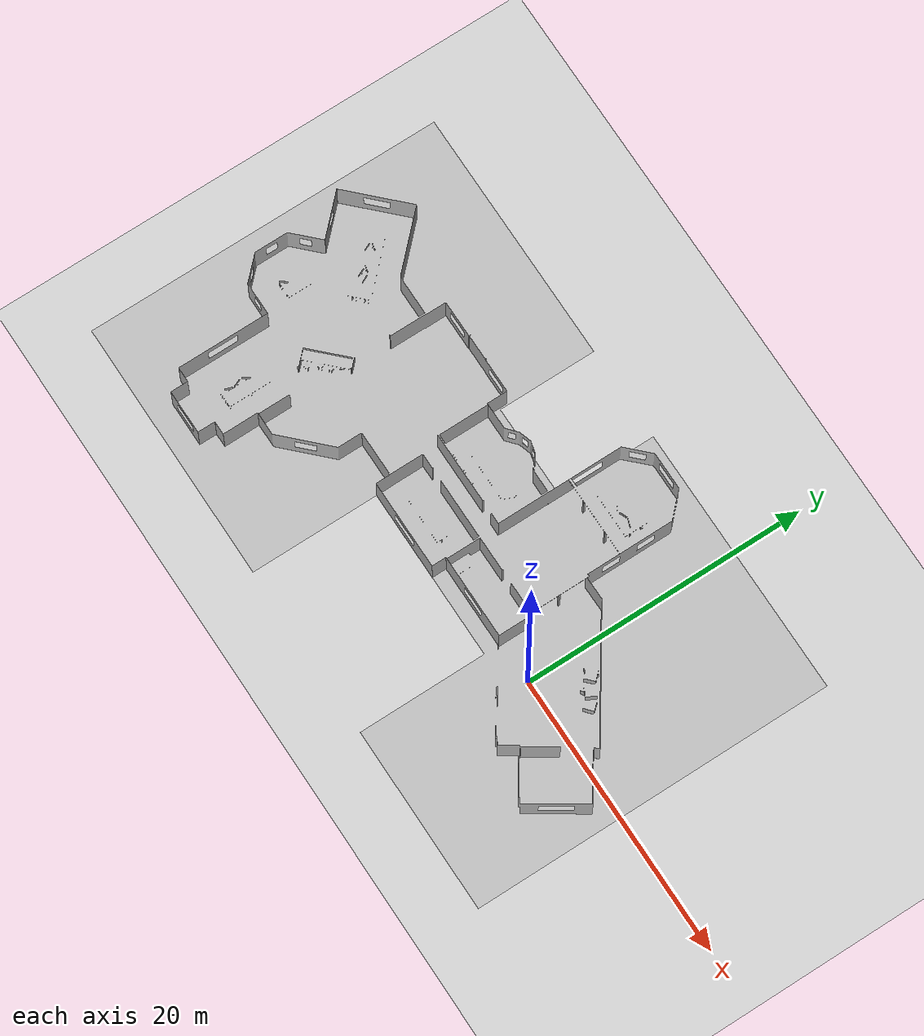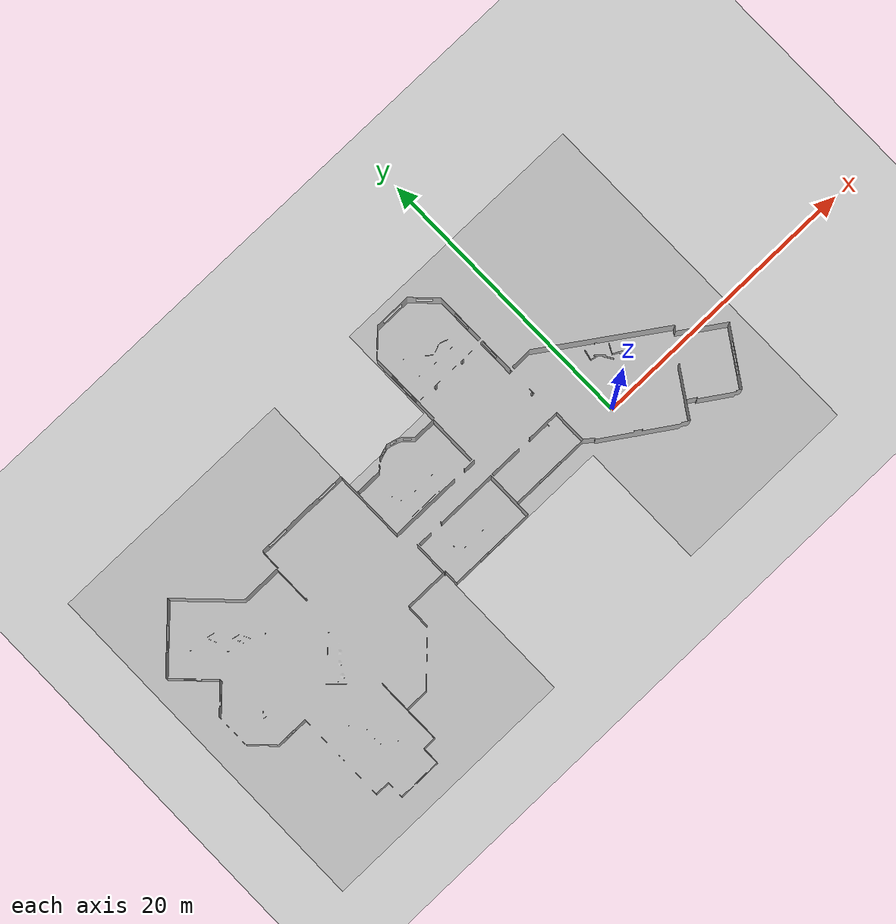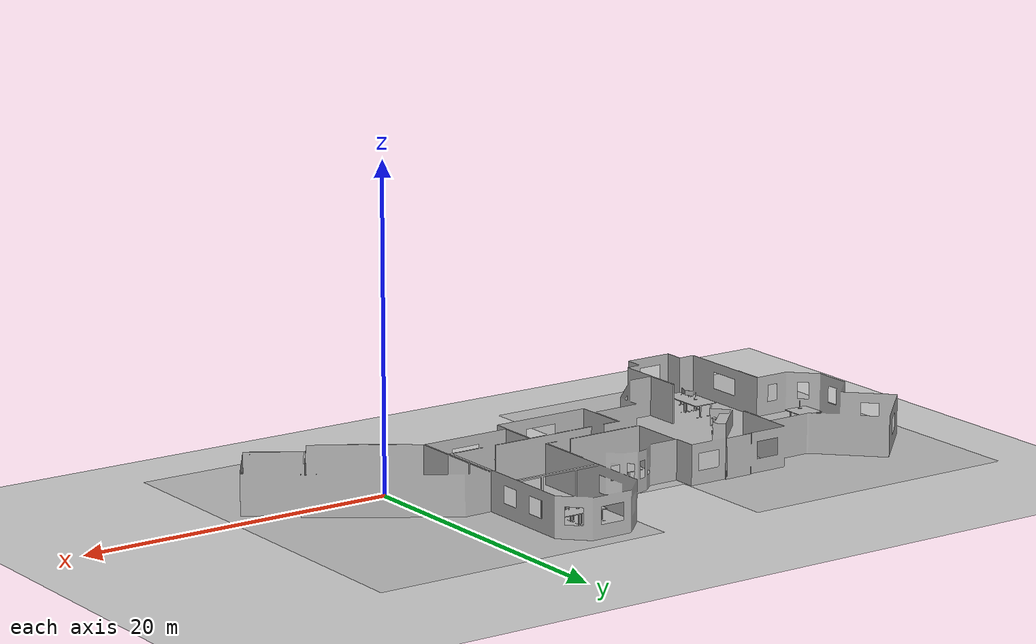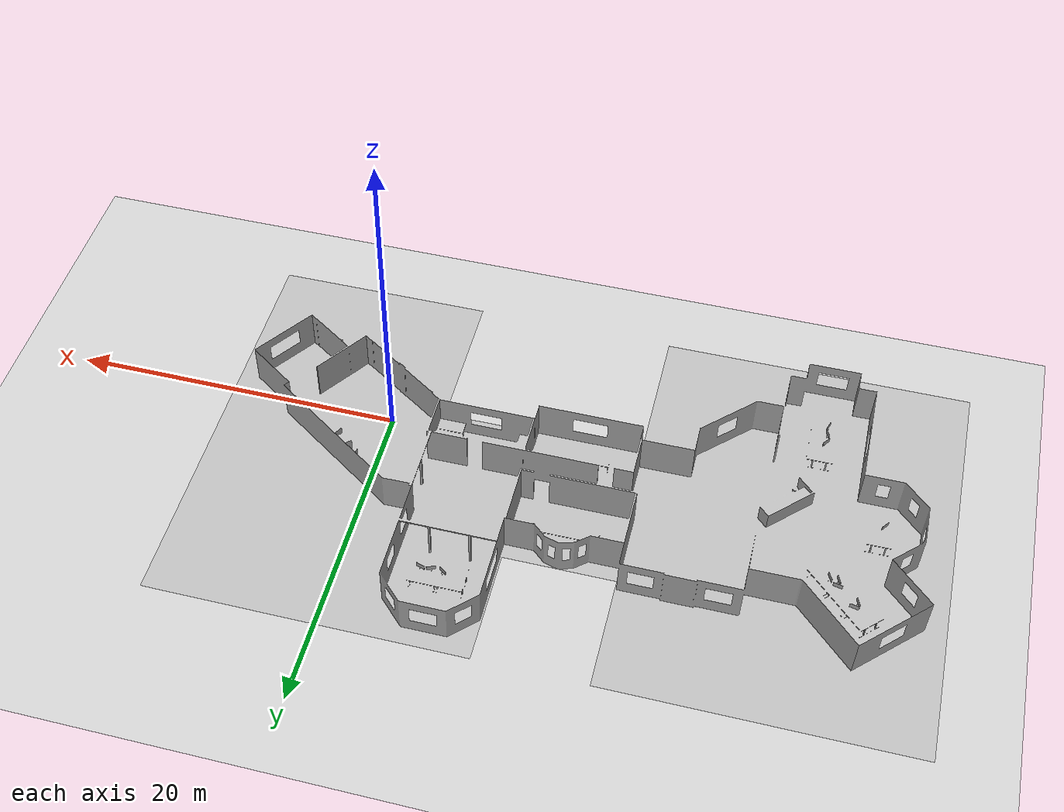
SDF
<sdf version="1.7">
 <world name="default">
  <light name="sun" type="directional">
   <pose>0 0 10 0 -0 0</pose>
   <diffuse>0.8 0.8 0.8 1</diffuse>
   <specular>0.2 0.2 0.2 1</specular>
   <attenuation>
    <range>1000</range>
    <constant>0.9</constant>
    <linear>0.01</linear>
    <quadratic>0.001</quadratic>
   </attenuation>
   <direction>-0.5 0.1 -0.9</direction>
   <spot><inner_angle>0</inner_angle><outer_angle>0</outer_angle><falloff>0</falloff></spot>
  </light>
  <model name="ground_plane">
   <static>1</static>
   <link name="link">
    <collision name="collision">
     <geometry><plane><normal>0 0 1</normal><size>100 100</size></plane></geometry>
     <surface><friction><ode><mu>100</mu><mu2>50</mu2></ode></friction></surface>
    </collision>
    <visual name="visual">
     <cast_shadows>0</cast_shadows>
     <geometry><plane><normal>0 0 1</normal><size>100 100</size></plane></geometry>
     <material>
      <script><uri>file://media/materials/scripts/gazebo.material</uri><name>Gazebo/Grey</name></script>
     </material>
    </visual>
   </link>
  </model>
  <gravity>0 0 -9.8</gravity>
  <magnetic_field>6e-06 2.3e-05 -4.2e-05</magnetic_field>
  <atmosphere type="adiabatic"/>
  <physics type="ode">
   <max_step_size>0.001</max_step_size>
   <real_time_factor>1</real_time_factor>
   <real_time_update_rate>1000</real_time_update_rate>
  </physics>
  <scene><ambient>0.4 0.4 0.4 1</ambient><background>0.7 0.7 0.7 1</background><shadows>1</shadows></scene>
  <audio><device>default</device></audio>
  <spherical_coordinates>
   <surface_model>EARTH_WGS84</surface_model>
   <latitude_deg>0</latitude_deg>
   <longitude_deg>0</longitude_deg>
   <elevation>0</elevation>
   <heading_deg>0</heading_deg>
  </spherical_coordinates>
  <model name="office_geom">
   <link name="office_world_link">
    <inertial>
     <mass>1</mass>
     <inertia><ixx>1</ixx><ixy>0</ixy><ixz>0</ixz><iyy>1</iyy><iyz>0</iyz><izz>1</izz></inertia>
    </inertial>
    <collision name="office_world_link_collision">
     <geometry><mesh><scale>1 1 1</scale><uri>model://cpr_office/meshes/office.dae</uri></mesh></geometry>
    </collision>
    <visual name="office_world_link_visual">
     <geometry><mesh><scale>1 1 1</scale><uri>model://cpr_office/meshes/office.dae</uri></mesh></geometry>
    </visual>
   </link>
   <static>1</static>
   <pose>-18.8214 1.89421 0.074237 0 -0 0</pose>
  </model>
 </world>
</sdf>
